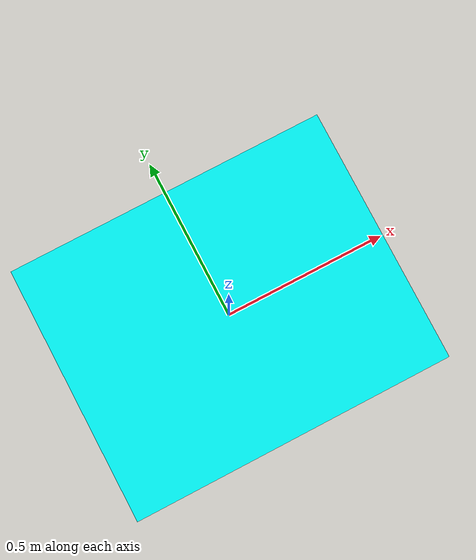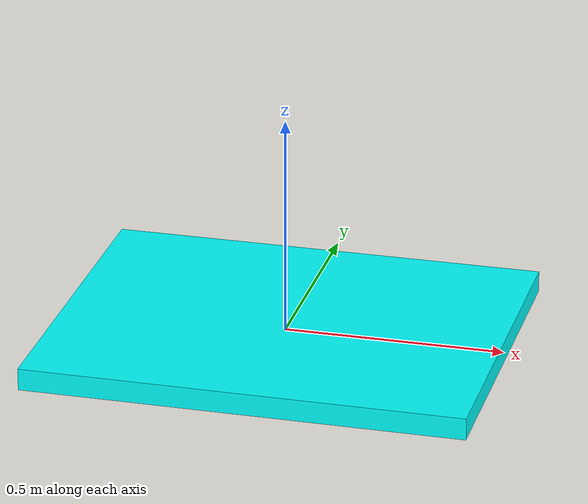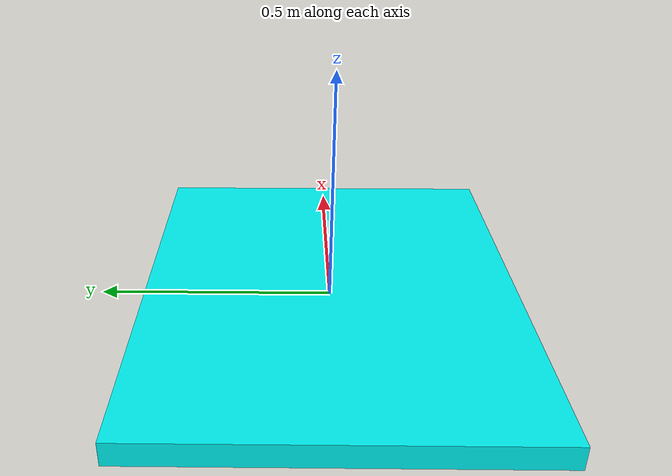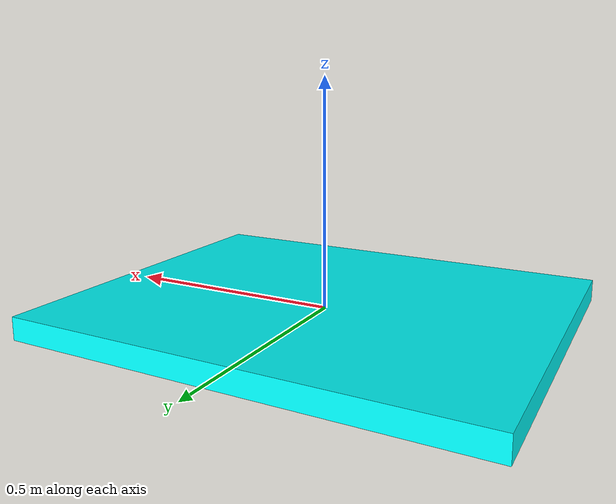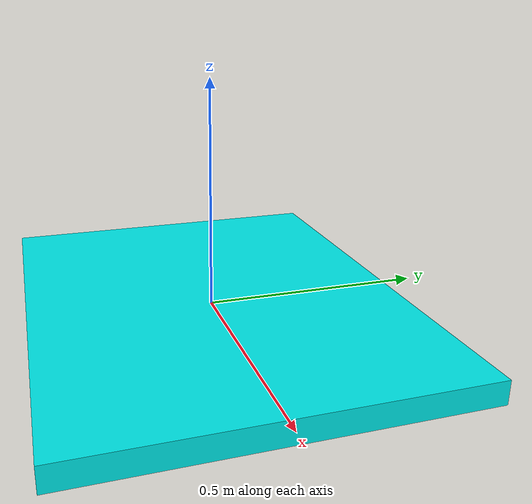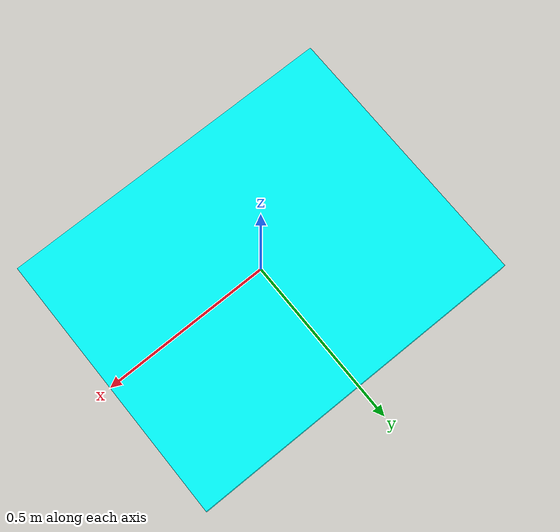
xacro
<?xml version="1.0"?>
<robot xmlns:xacro="http://www.ros.org/wiki/xacro" name="spatial_platform">

  <link name="platform">
    <inertial>
      <mass value="12.0"/>
      <inertia ixx="2.5" ixy="0" ixz="0" iyy="3.2" iyz="0" izz="5.0"/>
    </inertial>
    <visual>
      <geometry>
        <box size="1.0 0.8 0.05"/>
      </geometry>
      <material name="cyan"><color rgba="0.0 1.0 1.0 1.0"/></material>
    </visual>
    <collision>
      <geometry>
        <box size="1.0 0.8 0.05"/>
      </geometry>
    </collision>
  </link>

  <gazebo reference="platform">
    <material>Gazebo/Turquoise</material>
  </gazebo>

  <gazebo>
    <plugin name="gazebo_ros_p3d" filename="libgazebo_ros_p3d.so">
      <ros>
        <namespace>/platform</namespace>
        <remapping>odom:=odom</remapping>
      </ros>
      <body_name>platform</body_name>
      <frame_name>world</frame_name>
      <update_rate>100.0</update_rate>
    </plugin>
  </gazebo>

  <gazebo reference="platform">
    <sensor name="platform_imu" type="imu">
      <always_on>true</always_on>
      <update_rate>100.0</update_rate>
      <plugin name="gazebo_ros_imu_sensor" filename="libgazebo_ros_imu_sensor.so">
        <ros>
          <namespace>/platform</namespace>
          <remapping>~/out:=imu</remapping>
        </ros>
      </plugin>
    </sensor>
  </gazebo>

  <xacro:macro name="corner_force" params="suffix x y">
    <gazebo>
      <plugin name="force_${suffix}" filename="libgazebo_ros_force.so">
        <ros>
          <remapping>gazebo_ros_force:=/actuator_${suffix}_controller/command</remapping>
        </ros>
        <link_name>platform</link_name>
        <force_frame>world</force_frame>
        <point_of_application>${x} ${y} 0</point_of_application>
      </plugin>
    </gazebo>
  </xacro:macro>

  <xacro:corner_force suffix="fl" x="0.5" y="0.4"/>
  <xacro:corner_force suffix="fr" x="0.5" y="-0.4"/>
  <xacro:corner_force suffix="rl" x="-0.5" y="0.4"/>
  <xacro:corner_force suffix="rr" x="-0.5" y="-0.4"/>

</robot>
